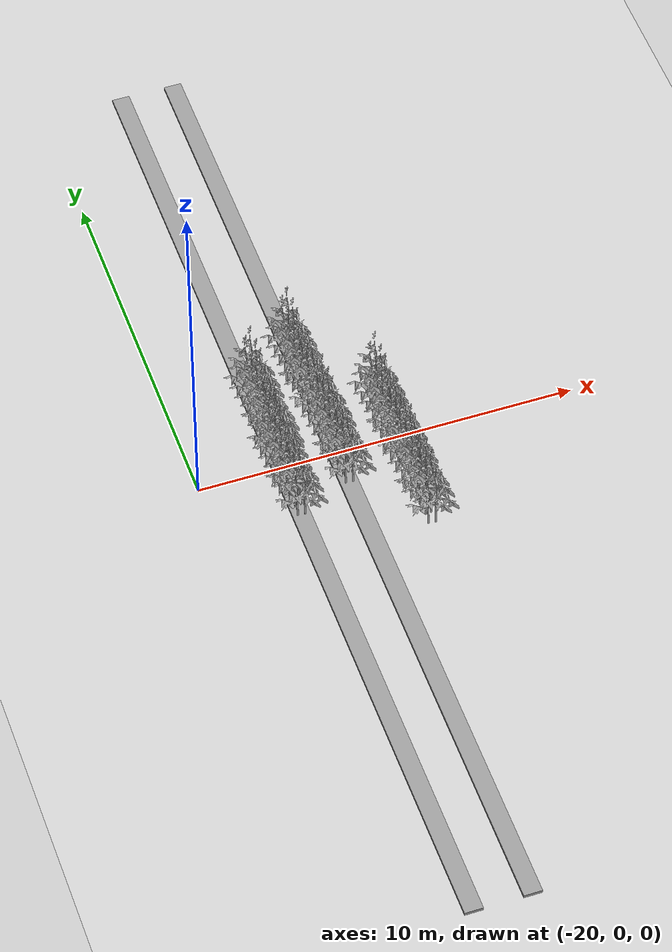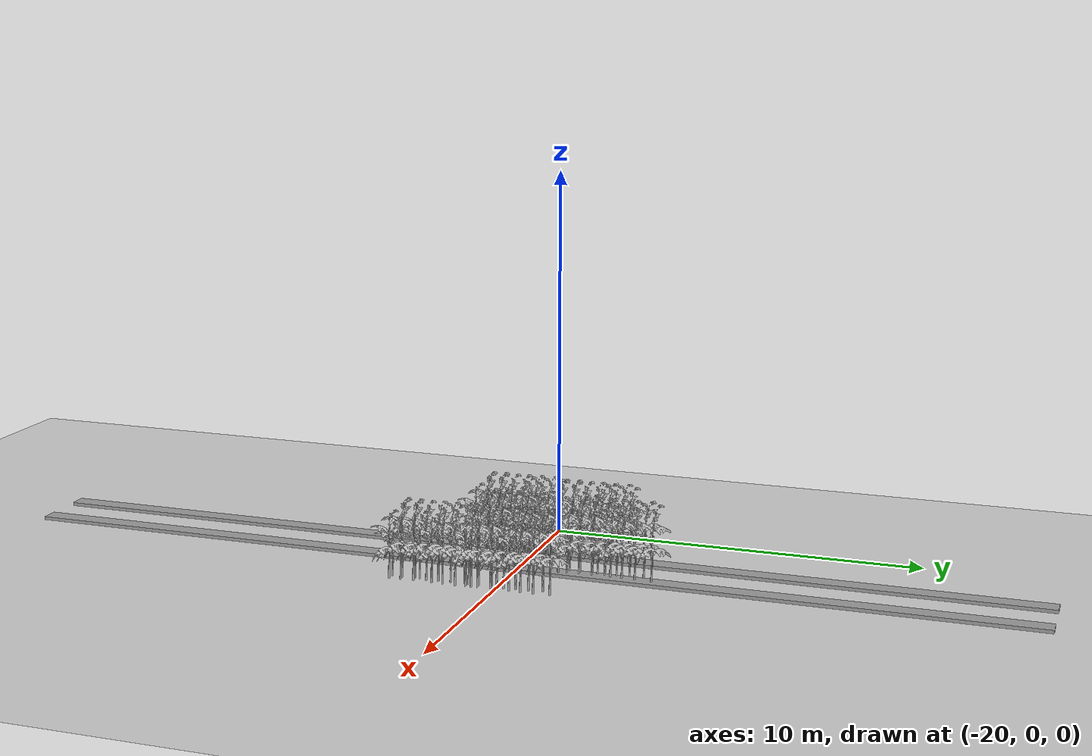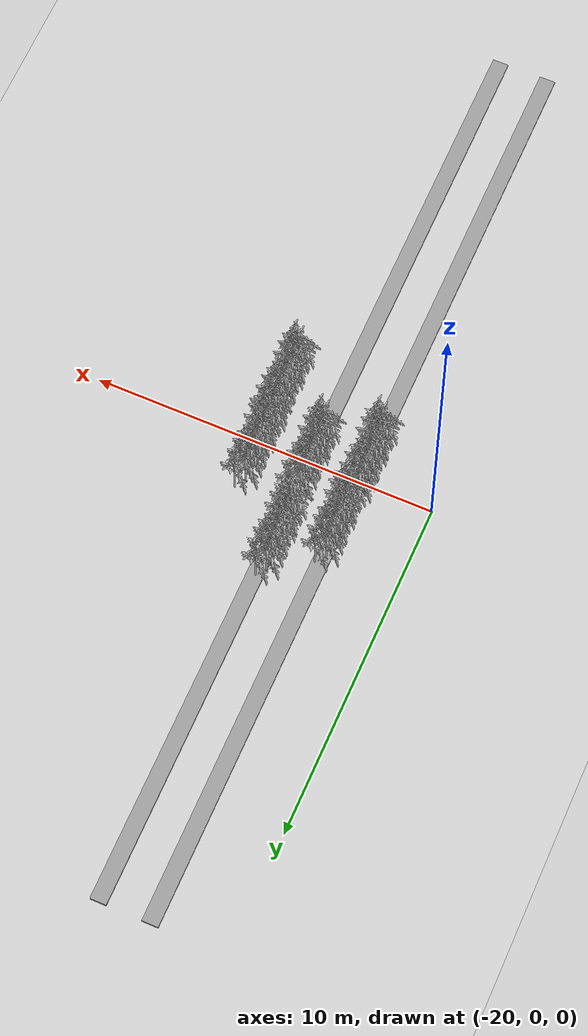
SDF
<sdf version="1.6">
 <world name="default">
  <model name="ground_plane">
   <static>1</static>
   <link name="link">
    <collision name="collision">
     <geometry><plane><normal>0 0 1</normal><size>100 100</size></plane></geometry>
     <surface>
      <contact><collide_bitmask>65535</collide_bitmask></contact>
      <friction><ode><mu>100</mu><mu2>50</mu2></ode></friction>
     </surface>
    </collision>
    <visual name="visual">
     <cast_shadows>0</cast_shadows>
     <geometry><plane><normal>0 0 1</normal><size>100 100</size></plane></geometry>
     <material>
      <script><uri>file://media/materials/scripts/gazebo.material</uri><name>Gazebo/Grey</name></script>
     </material>
    </visual>
   </link>
  </model>
  <model name="Middle_Plant_3">
   <model name="tomato_plant_big">
    <static>1</static>
    <link name="link">
     <collision name="collision">
      <geometry>
       <mesh><scale>5e-06 5e-06 6e-06</scale><uri>model://tomato_plant_big/meshes/tomato-plant.dae</uri></mesh>
      </geometry>
     </collision>
     <visual name="visual">
      <geometry>
       <mesh><scale>5e-06 5e-06 7e-06</scale><uri>model://tomato_plant_big/meshes/tomato-plant.dae</uri></mesh>
      </geometry>
     </visual>
    </link>
    <pose>0.085326 1.23023 0 0 -0 0</pose>
   </model>
   <model name="tomato_plant_big_0">
    <static>1</static>
    <link name="link">
     <collision name="collision">
      <geometry>
       <mesh><scale>5e-06 5e-06 6e-06</scale><uri>model://tomato_plant_big/meshes/tomato-plant.dae</uri></mesh>
      </geometry>
     </collision>
     <visual name="visual">
      <geometry>
       <mesh><scale>5e-06 5e-06 7e-06</scale><uri>model://tomato_plant_big/meshes/tomato-plant.dae</uri></mesh>
      </geometry>
     </visual>
    </link>
    <pose>-0.133881 0.970183 0 0 -0 0</pose>
   </model>
   <model name="tomato_plant_big_1">
    <static>1</static>
    <link name="link">
     <collision name="collision">
      <geometry>
       <mesh><scale>5e-06 5e-06 6e-06</scale><uri>model://tomato_plant_big/meshes/tomato-plant.dae</uri></mesh>
      </geometry>
     </collision>
     <visual name="visual">
      <geometry>
       <mesh><scale>5e-06 5e-06 7e-06</scale><uri>model://tomato_plant_big/meshes/tomato-plant.dae</uri></mesh>
      </geometry>
     </visual>
    </link>
    <pose>0.091162 0.792381 0 0 -0 0</pose>
   </model>
   <model name="tomato_plant_big_2">
    <static>1</static>
    <link name="link">
     <collision name="collision">
      <geometry>
       <mesh><scale>5e-06 5e-06 6e-06</scale><uri>model://tomato_plant_big/meshes/tomato-plant.dae</uri></mesh>
      </geometry>
     </collision>
     <visual name="visual">
      <geometry>
       <mesh><scale>5e-06 5e-06 7e-06</scale><uri>model://tomato_plant_big/meshes/tomato-plant.dae</uri></mesh>
      </geometry>
     </visual>
    </link>
    <pose>-0.099228 0.602587 0 0 -0 0</pose>
   </model>
   <model name="tomato_plant_big_3">
    <static>1</static>
    <link name="link">
     <collision name="collision">
      <geometry>
       <mesh><scale>5e-06 5e-06 6e-06</scale><uri>model://tomato_plant_big/meshes/tomato-plant.dae</uri></mesh>
      </geometry>
     </collision>
     <visual name="visual">
      <geometry>
       <mesh><scale>5e-06 5e-06 7e-06</scale><uri>model://tomato_plant_big/meshes/tomato-plant.dae</uri></mesh>
      </geometry>
     </visual>
    </link>
    <pose>0.083199 0.447645 0 0 -0 0</pose>
   </model>
   <model name="tomato_plant_big_4">
    <static>1</static>
    <link name="link">
     <collision name="collision">
      <geometry>
       <mesh><scale>5e-06 5e-06 6e-06</scale><uri>model://tomato_plant_big/meshes/tomato-plant.dae</uri></mesh>
      </geometry>
     </collision>
     <visual name="visual">
      <geometry>
       <mesh><scale>5e-06 5e-06 7e-06</scale><uri>model://tomato_plant_big/meshes/tomato-plant.dae</uri></mesh>
      </geometry>
     </visual>
    </link>
    <pose>-0.079499 0.263486 0 0 -0 0</pose>
   </model>
   <model name="tomato_plant_big_5">
    <static>1</static>
    <link name="link">
     <collision name="collision">
      <geometry>
       <mesh><scale>5e-06 5e-06 6e-06</scale><uri>model://tomato_plant_big/meshes/tomato-plant.dae</uri></mesh>
      </geometry>
     </collision>
     <visual name="visual">
      <geometry>
       <mesh><scale>5e-06 5e-06 7e-06</scale><uri>model://tomato_plant_big/meshes/tomato-plant.dae</uri></mesh>
      </geometry>
     </visual>
    </link>
    <pose>-0.033274 -0.040578 0 0 -0 0</pose>
   </model>
   <model name="tomato_plant_big_6">
    <static>1</static>
    <link name="link">
     <collision name="collision">
      <geometry>
       <mesh><scale>5e-06 5e-06 6e-06</scale><uri>model://tomato_plant_big/meshes/tomato-plant.dae</uri></mesh>
      </geometry>
     </collision>
     <visual name="visual">
      <geometry>
       <mesh><scale>5e-06 5e-06 7e-06</scale><uri>model://tomato_plant_big/meshes/tomato-plant.dae</uri></mesh>
      </geometry>
     </visual>
    </link>
    <pose>-0.07669 -0.382406 0 0 -0 0</pose>
   </model>
   <model name="tomato_plant_big_7">
    <static>1</static>
    <link name="link">
     <collision name="collision">
      <geometry>
       <mesh><scale>5e-06 5e-06 6e-06</scale><uri>model://tomato_plant_big/meshes/tomato-plant.dae</uri></mesh>
      </geometry>
     </collision>
     <visual name="visual">
      <geometry>
       <mesh><scale>5e-06 5e-06 7e-06</scale><uri>model://tomato_plant_big/meshes/tomato-plant.dae</uri></mesh>
      </geometry>
     </visual>
    </link>
    <pose>0.092388 -0.348189 0 0 -0 0</pose>
   </model>
   <model name="tomato_plant_big_8">
    <static>1</static>
    <link name="link">
     <collision name="collision">
      <geometry>
       <mesh><scale>5e-06 5e-06 6e-06</scale><uri>model://tomato_plant_big/meshes/tomato-plant.dae</uri></mesh>
      </geometry>
     </collision>
     <visual name="visual">
      <geometry>
       <mesh><scale>5e-06 5e-06 7e-06</scale><uri>model://tomato_plant_big/meshes/tomato-plant.dae</uri></mesh>
      </geometry>
     </visual>
    </link>
    <pose>0.099522 -0.697525 0 0 -0 0</pose>
   </model>
   <model name="tomato_plant_big_9">
    <static>1</static>
    <link name="link">
     <collision name="collision">
      <geometry>
       <mesh><scale>5e-06 5e-06 6e-06</scale><uri>model://tomato_plant_big/meshes/tomato-plant.dae</uri></mesh>
      </geometry>
     </collision>
     <visual name="visual">
      <geometry>
       <mesh><scale>5e-06 5e-06 7e-06</scale><uri>model://tomato_plant_big/meshes/tomato-plant.dae</uri></mesh>
      </geometry>
     </visual>
    </link>
    <pose>-0.050449 -0.712772 0 0 -0 0</pose>
   </model>
   <model name="tomato_plant_medium">
    <static>1</static>
    <link name="link">
     <collision name="collision">
      <geometry>
       <mesh><scale>5e-06 5e-06 6e-06</scale><uri>model://tomato_plant_medium/meshes/tomato-plant.dae</uri></mesh>
      </geometry>
     </collision>
     <visual name="visual">
      <geometry>
       <mesh><scale>5e-06 5e-06 6e-06</scale><uri>model://tomato_plant_medium/meshes/tomato-plant.dae</uri></mesh>
      </geometry>
     </visual>
    </link>
    <pose>0.078434 0.139842 0 0 -0 0</pose>
   </model>
   <model name="tomato_plant_medium_0">
    <static>1</static>
    <link name="link">
     <collision name="collision">
      <geometry>
       <mesh><scale>5e-06 5e-06 6e-06</scale><uri>model://tomato_plant_medium/meshes/tomato-plant.dae</uri></mesh>
      </geometry>
     </collision>
     <visual name="visual">
      <geometry>
       <mesh><scale>5e-06 5e-06 6e-06</scale><uri>model://tomato_plant_medium/meshes/tomato-plant.dae</uri></mesh>
      </geometry>
     </visual>
    </link>
    <pose>-0.079755 -0.244483 0 0 -0 0</pose>
   </model>
   <model name="tomato_plant_medium_1">
    <static>1</static>
    <link name="link">
     <collision name="collision">
      <geometry>
       <mesh><scale>5e-06 5e-06 6e-06</scale><uri>model://tomato_plant_medium/meshes/tomato-plant.dae</uri></mesh>
      </geometry>
     </collision>
     <visual name="visual">
      <geometry>
       <mesh><scale>5e-06 5e-06 6e-06</scale><uri>model://tomato_plant_medium/meshes/tomato-plant.dae</uri></mesh>
      </geometry>
     </visual>
    </link>
    <pose>0.106744 -1.01815 0 0 -0 0</pose>
   </model>
   <model name="tomato_plant_small">
    <static>1</static>
    <link name="link">
     <collision name="collision">
      <geometry>
       <mesh><scale>5e-06 5e-06 5e-06</scale><uri>model://tomato_plant_small/meshes/tomato-plant.dae</uri></mesh>
      </geometry>
     </collision>
     <visual name="visual">
      <geometry>
       <mesh><scale>5e-06 5e-06 5e-06</scale><uri>model://tomato_plant_small/meshes/tomato-plant.dae</uri></mesh>
      </geometry>
     </visual>
    </link>
    <pose>-0.083979 -1.00222 0 0 -0 0</pose>
   </model>
   <static>0</static>
   <pose>-17.83 -0.652997 0 0 -0 0</pose>
  </model>
  <model name="Middle_Plant_4">
   <model name="tomato_plant_big">
    <static>1</static>
    <link name="link">
     <collision name="collision">
      <geometry>
       <mesh><scale>5e-06 5e-06 6e-06</scale><uri>model://tomato_plant_big/meshes/tomato-plant.dae</uri></mesh>
      </geometry>
     </collision>
     <visual name="visual">
      <geometry>
       <mesh><scale>5e-06 5e-06 7e-06</scale><uri>model://tomato_plant_big/meshes/tomato-plant.dae</uri></mesh>
      </geometry>
     </visual>
    </link>
    <pose>0.085326 1.23023 0 0 -0 0</pose>
   </model>
   <model name="tomato_plant_big_0">
    <static>1</static>
    <link name="link">
     <collision name="collision">
      <geometry>
       <mesh><scale>5e-06 5e-06 6e-06</scale><uri>model://tomato_plant_big/meshes/tomato-plant.dae</uri></mesh>
      </geometry>
     </collision>
     <visual name="visual">
      <geometry>
       <mesh><scale>5e-06 5e-06 7e-06</scale><uri>model://tomato_plant_big/meshes/tomato-plant.dae</uri></mesh>
      </geometry>
     </visual>
    </link>
    <pose>-0.133881 0.970183 0 0 -0 0</pose>
   </model>
   <model name="tomato_plant_big_1">
    <static>1</static>
    <link name="link">
     <collision name="collision">
      <geometry>
       <mesh><scale>5e-06 5e-06 6e-06</scale><uri>model://tomato_plant_big/meshes/tomato-plant.dae</uri></mesh>
      </geometry>
     </collision>
     <visual name="visual">
      <geometry>
       <mesh><scale>5e-06 5e-06 7e-06</scale><uri>model://tomato_plant_big/meshes/tomato-plant.dae</uri></mesh>
      </geometry>
     </visual>
    </link>
    <pose>0.091162 0.792381 0 0 -0 0</pose>
   </model>
   <model name="tomato_plant_big_2">
    <static>1</static>
    <link name="link">
     <collision name="collision">
      <geometry>
       <mesh><scale>5e-06 5e-06 6e-06</scale><uri>model://tomato_plant_big/meshes/tomato-plant.dae</uri></mesh>
      </geometry>
     </collision>
     <visual name="visual">
      <geometry>
       <mesh><scale>5e-06 5e-06 7e-06</scale><uri>model://tomato_plant_big/meshes/tomato-plant.dae</uri></mesh>
      </geometry>
     </visual>
    </link>
    <pose>-0.099228 0.602587 0 0 -0 0</pose>
   </model>
   <model name="tomato_plant_big_3">
    <static>1</static>
    <link name="link">
     <collision name="collision">
      <geometry>
       <mesh><scale>5e-06 5e-06 6e-06</scale><uri>model://tomato_plant_big/meshes/tomato-plant.dae</uri></mesh>
      </geometry>
     </collision>
     <visual name="visual">
      <geometry>
       <mesh><scale>5e-06 5e-06 7e-06</scale><uri>model://tomato_plant_big/meshes/tomato-plant.dae</uri></mesh>
      </geometry>
     </visual>
    </link>
    <pose>0.083199 0.447645 0 0 -0 0</pose>
   </model>
   <model name="tomato_plant_big_4">
    <static>1</static>
    <link name="link">
     <collision name="collision">
      <geometry>
       <mesh><scale>5e-06 5e-06 6e-06</scale><uri>model://tomato_plant_big/meshes/tomato-plant.dae</uri></mesh>
      </geometry>
     </collision>
     <visual name="visual">
      <geometry>
       <mesh><scale>5e-06 5e-06 7e-06</scale><uri>model://tomato_plant_big/meshes/tomato-plant.dae</uri></mesh>
      </geometry>
     </visual>
    </link>
    <pose>-0.079499 0.263486 0 0 -0 0</pose>
   </model>
   <model name="tomato_plant_big_5">
    <static>1</static>
    <link name="link">
     <collision name="collision">
      <geometry>
       <mesh><scale>5e-06 5e-06 6e-06</scale><uri>model://tomato_plant_big/meshes/tomato-plant.dae</uri></mesh>
      </geometry>
     </collision>
     <visual name="visual">
      <geometry>
       <mesh><scale>5e-06 5e-06 7e-06</scale><uri>model://tomato_plant_big/meshes/tomato-plant.dae</uri></mesh>
      </geometry>
     </visual>
    </link>
    <pose>-0.033274 -0.040578 0 0 -0 0</pose>
   </model>
   <model name="tomato_plant_big_6">
    <static>1</static>
    <link name="link">
     <collision name="collision">
      <geometry>
       <mesh><scale>5e-06 5e-06 6e-06</scale><uri>model://tomato_plant_big/meshes/tomato-plant.dae</uri></mesh>
      </geometry>
     </collision>
     <visual name="visual">
      <geometry>
       <mesh><scale>5e-06 5e-06 7e-06</scale><uri>model://tomato_plant_big/meshes/tomato-plant.dae</uri></mesh>
      </geometry>
     </visual>
    </link>
    <pose>-0.07669 -0.382406 0 0 -0 0</pose>
   </model>
   <model name="tomato_plant_big_7">
    <static>1</static>
    <link name="link">
     <collision name="collision">
      <geometry>
       <mesh><scale>5e-06 5e-06 6e-06</scale><uri>model://tomato_plant_big/meshes/tomato-plant.dae</uri></mesh>
      </geometry>
     </collision>
     <visual name="visual">
      <geometry>
       <mesh><scale>5e-06 5e-06 7e-06</scale><uri>model://tomato_plant_big/meshes/tomato-plant.dae</uri></mesh>
      </geometry>
     </visual>
    </link>
    <pose>0.092388 -0.348189 0 0 -0 0</pose>
   </model>
   <model name="tomato_plant_big_8">
    <static>1</static>
    <link name="link">
     <collision name="collision">
      <geometry>
       <mesh><scale>5e-06 5e-06 6e-06</scale><uri>model://tomato_plant_big/meshes/tomato-plant.dae</uri></mesh>
      </geometry>
     </collision>
     <visual name="visual">
      <geometry>
       <mesh><scale>5e-06 5e-06 7e-06</scale><uri>model://tomato_plant_big/meshes/tomato-plant.dae</uri></mesh>
      </geometry>
     </visual>
    </link>
    <pose>0.099522 -0.697525 0 0 -0 0</pose>
   </model>
   <model name="tomato_plant_big_9">
    <static>1</static>
    <link name="link">
     <collision name="collision">
      <geometry>
       <mesh><scale>5e-06 5e-06 6e-06</scale><uri>model://tomato_plant_big/meshes/tomato-plant.dae</uri></mesh>
      </geometry>
     </collision>
     <visual name="visual">
      <geometry>
       <mesh><scale>5e-06 5e-06 7e-06</scale><uri>model://tomato_plant_big/meshes/tomato-plant.dae</uri></mesh>
      </geometry>
     </visual>
    </link>
    <pose>-0.050449 -0.712772 0 0 -0 0</pose>
   </model>
   <model name="tomato_plant_medium">
    <static>1</static>
    <link name="link">
     <collision name="collision">
      <geometry>
       <mesh><scale>5e-06 5e-06 6e-06</scale><uri>model://tomato_plant_medium/meshes/tomato-plant.dae</uri></mesh>
      </geometry>
     </collision>
     <visual name="visual">
      <geometry>
       <mesh><scale>5e-06 5e-06 6e-06</scale><uri>model://tomato_plant_medium/meshes/tomato-plant.dae</uri></mesh>
      </geometry>
     </visual>
    </link>
    <pose>0.078434 0.139842 0 0 -0 0</pose>
   </model>
   <model name="tomato_plant_medium_0">
    <static>1</static>
    <link name="link">
     <collision name="collision">
      <geometry>
       <mesh><scale>5e-06 5e-06 6e-06</scale><uri>model://tomato_plant_medium/meshes/tomato-plant.dae</uri></mesh>
      </geometry>
     </collision>
     <visual name="visual">
      <geometry>
       <mesh><scale>5e-06 5e-06 6e-06</scale><uri>model://tomato_plant_medium/meshes/tomato-plant.dae</uri></mesh>
      </geometry>
     </visual>
    </link>
    <pose>-0.079755 -0.244483 0 0 -0 0</pose>
   </model>
   <model name="tomato_plant_medium_1">
    <static>1</static>
    <link name="link">
     <collision name="collision">
      <geometry>
       <mesh><scale>5e-06 5e-06 6e-06</scale><uri>model://tomato_plant_medium/meshes/tomato-plant.dae</uri></mesh>
      </geometry>
     </collision>
     <visual name="visual">
      <geometry>
       <mesh><scale>5e-06 5e-06 6e-06</scale><uri>model://tomato_plant_medium/meshes/tomato-plant.dae</uri></mesh>
      </geometry>
     </visual>
    </link>
    <pose>0.106744 -1.01815 0 0 -0 0</pose>
   </model>
   <model name="tomato_plant_small">
    <static>1</static>
    <link name="link">
     <collision name="collision">
      <geometry>
       <mesh><scale>5e-06 5e-06 5e-06</scale><uri>model://tomato_plant_small/meshes/tomato-plant.dae</uri></mesh>
      </geometry>
     </collision>
     <visual name="visual">
      <geometry>
       <mesh><scale>5e-06 5e-06 5e-06</scale><uri>model://tomato_plant_small/meshes/tomato-plant.dae</uri></mesh>
      </geometry>
     </visual>
    </link>
    <pose>-0.083979 -1.00222 0 0 -0 0</pose>
   </model>
   <static>0</static>
   <pose>-17.7665 1.40973 0 0 -0 0</pose>
  </model>
  <model name="Middle_Plant_20">
   <model name="tomato_plant_big">
    <static>1</static>
    <link name="link">
     <collision name="collision">
      <geometry>
       <mesh><scale>5e-06 5e-06 6e-06</scale><uri>model://tomato_plant_big/meshes/tomato-plant.dae</uri></mesh>
      </geometry>
     </collision>
     <visual name="visual">
      <geometry>
       <mesh><scale>5e-06 5e-06 7e-06</scale><uri>model://tomato_plant_big/meshes/tomato-plant.dae</uri></mesh>
      </geometry>
     </visual>
    </link>
    <pose>0.085326 1.23023 0 0 -0 0</pose>
   </model>
   <model name="tomato_plant_big_0">
    <static>1</static>
    <link name="link">
     <collision name="collision">
      <geometry>
       <mesh><scale>5e-06 5e-06 6e-06</scale><uri>model://tomato_plant_big/meshes/tomato-plant.dae</uri></mesh>
      </geometry>
     </collision>
     <visual name="visual">
      <geometry>
       <mesh><scale>5e-06 5e-06 7e-06</scale><uri>model://tomato_plant_big/meshes/tomato-plant.dae</uri></mesh>
      </geometry>
     </visual>
    </link>
    <pose>-0.133881 0.970183 0 0 -0 0</pose>
   </model>
   <model name="tomato_plant_big_1">
    <static>1</static>
    <link name="link">
     <collision name="collision">
      <geometry>
       <mesh><scale>5e-06 5e-06 6e-06</scale><uri>model://tomato_plant_big/meshes/tomato-plant.dae</uri></mesh>
      </geometry>
     </collision>
     <visual name="visual">
      <geometry>
       <mesh><scale>5e-06 5e-06 7e-06</scale><uri>model://tomato_plant_big/meshes/tomato-plant.dae</uri></mesh>
      </geometry>
     </visual>
    </link>
    <pose>0.091162 0.792381 0 0 -0 0</pose>
   </model>
   <model name="tomato_plant_big_2">
    <static>1</static>
    <link name="link">
     <collision name="collision">
      <geometry>
       <mesh><scale>5e-06 5e-06 6e-06</scale><uri>model://tomato_plant_big/meshes/tomato-plant.dae</uri></mesh>
      </geometry>
     </collision>
     <visual name="visual">
      <geometry>
       <mesh><scale>5e-06 5e-06 7e-06</scale><uri>model://tomato_plant_big/meshes/tomato-plant.dae</uri></mesh>
      </geometry>
     </visual>
    </link>
    <pose>-0.099228 0.602587 0 0 -0 0</pose>
   </model>
   <model name="tomato_plant_big_3">
    <static>1</static>
    <link name="link">
     <collision name="collision">
      <geometry>
       <mesh><scale>5e-06 5e-06 6e-06</scale><uri>model://tomato_plant_big/meshes/tomato-plant.dae</uri></mesh>
      </geometry>
     </collision>
     <visual name="visual">
      <geometry>
       <mesh><scale>5e-06 5e-06 7e-06</scale><uri>model://tomato_plant_big/meshes/tomato-plant.dae</uri></mesh>
      </geometry>
     </visual>
    </link>
    <pose>0.083199 0.447645 0 0 -0 0</pose>
   </model>
   <model name="tomato_plant_big_4">
    <static>1</static>
    <link name="link">
     <collision name="collision">
      <geometry>
       <mesh><scale>5e-06 5e-06 6e-06</scale><uri>model://tomato_plant_big/meshes/tomato-plant.dae</uri></mesh>
      </geometry>
     </collision>
     <visual name="visual">
      <geometry>
       <mesh><scale>5e-06 5e-06 7e-06</scale><uri>model://tomato_plant_big/meshes/tomato-plant.dae</uri></mesh>
      </geometry>
     </visual>
    </link>
    <pose>-0.079499 0.263486 0 0 -0 0</pose>
   </model>
   <model name="tomato_plant_big_5">
    <static>1</static>
    <link name="link">
     <collision name="collision">
      <geometry>
       <mesh><scale>5e-06 5e-06 6e-06</scale><uri>model://tomato_plant_big/meshes/tomato-plant.dae</uri></mesh>
      </geometry>
     </collision>
     <visual name="visual">
      <geometry>
       <mesh><scale>5e-06 5e-06 7e-06</scale><uri>model://tomato_plant_big/meshes/tomato-plant.dae</uri></mesh>
      </geometry>
     </visual>
    </link>
    <pose>-0.033274 -0.040578 0 0 -0 0</pose>
   </model>
   <model name="tomato_plant_big_6">
    <static>1</static>
    <link name="link">
     <collision name="collision">
      <geometry>
       <mesh><scale>5e-06 5e-06 6e-06</scale><uri>model://tomato_plant_big/meshes/tomato-plant.dae</uri></mesh>
      </geometry>
     </collision>
     <visual name="visual">
      <geometry>
       <mesh><scale>5e-06 5e-06 7e-06</scale><uri>model://tomato_plant_big/meshes/tomato-plant.dae</uri></mesh>
      </geometry>
     </visual>
    </link>
    <pose>-0.07669 -0.382406 0 0 -0 0</pose>
   </model>
   <model name="tomato_plant_big_7">
    <static>1</static>
    <link name="link">
     <collision name="collision">
      <geometry>
       <mesh><scale>5e-06 5e-06 6e-06</scale><uri>model://tomato_plant_big/meshes/tomato-plant.dae</uri></mesh>
      </geometry>
     </collision>
     <visual name="visual">
      <geometry>
       <mesh><scale>5e-06 5e-06 7e-06</scale><uri>model://tomato_plant_big/meshes/tomato-plant.dae</uri></mesh>
      </geometry>
     </visual>
    </link>
    <pose>0.092388 -0.348189 0 0 -0 0</pose>
   </model>
   <model name="tomato_plant_big_8">
    <static>1</static>
    <link name="link">
     <collision name="collision">
      <geometry>
       <mesh><scale>5e-06 5e-06 6e-06</scale><uri>model://tomato_plant_big/meshes/tomato-plant.dae</uri></mesh>
      </geometry>
     </collision>
     <visual name="visual">
      <geometry>
       <mesh><scale>5e-06 5e-06 7e-06</scale><uri>model://tomato_plant_big/meshes/tomato-plant.dae</uri></mesh>
      </geometry>
     </visual>
    </link>
    <pose>0.099522 -0.697525 0 0 -0 0</pose>
   </model>
   <model name="tomato_plant_big_9">
    <static>1</static>
    <link name="link">
     <collision name="collision">
      <geometry>
       <mesh><scale>5e-06 5e-06 6e-06</scale><uri>model://tomato_plant_big/meshes/tomato-plant.dae</uri></mesh>
      </geometry>
     </collision>
     <visual name="visual">
      <geometry>
       <mesh><scale>5e-06 5e-06 7e-06</scale><uri>model://tomato_plant_big/meshes/tomato-plant.dae</uri></mesh>
      </geometry>
     </visual>
    </link>
    <pose>-0.050449 -0.712772 0 0 -0 0</pose>
   </model>
   <model name="tomato_plant_medium">
    <static>1</static>
    <link name="link">
     <collision name="collision">
      <geometry>
       <mesh><scale>5e-06 5e-06 6e-06</scale><uri>model://tomato_plant_medium/meshes/tomato-plant.dae</uri></mesh>
      </geometry>
     </collision>
     <visual name="visual">
      <geometry>
       <mesh><scale>5e-06 5e-06 6e-06</scale><uri>model://tomato_plant_medium/meshes/tomato-plant.dae</uri></mesh>
      </geometry>
     </visual>
    </link>
    <pose>0.078434 0.139842 0 0 -0 0</pose>
   </model>
   <model name="tomato_plant_medium_0">
    <static>1</static>
    <link name="link">
     <collision name="collision">
      <geometry>
       <mesh><scale>5e-06 5e-06 6e-06</scale><uri>model://tomato_plant_medium/meshes/tomato-plant.dae</uri></mesh>
      </geometry>
     </collision>
     <visual name="visual">
      <geometry>
       <mesh><scale>5e-06 5e-06 6e-06</scale><uri>model://tomato_plant_medium/meshes/tomato-plant.dae</uri></mesh>
      </geometry>
     </visual>
    </link>
    <pose>-0.079755 -0.244483 0 0 -0 0</pose>
   </model>
   <model name="tomato_plant_medium_1">
    <static>1</static>
    <link name="link">
     <collision name="collision">
      <geometry>
       <mesh><scale>5e-06 5e-06 6e-06</scale><uri>model://tomato_plant_medium/meshes/tomato-plant.dae</uri></mesh>
      </geometry>
     </collision>
     <visual name="visual">
      <geometry>
       <mesh><scale>5e-06 5e-06 6e-06</scale><uri>model://tomato_plant_medium/meshes/tomato-plant.dae</uri></mesh>
      </geometry>
     </visual>
    </link>
    <pose>0.106744 -1.01815 0 0 -0 0</pose>
   </model>
   <model name="tomato_plant_small">
    <static>1</static>
    <link name="link">
     <collision name="collision">
      <geometry>
       <mesh><scale>5e-06 5e-06 5e-06</scale><uri>model://tomato_plant_small/meshes/tomato-plant.dae</uri></mesh>
      </geometry>
     </collision>
     <visual name="visual">
      <geometry>
       <mesh><scale>5e-06 5e-06 5e-06</scale><uri>model://tomato_plant_small/meshes/tomato-plant.dae</uri></mesh>
      </geometry>
     </visual>
    </link>
    <pose>-0.083979 -1.00222 0 0 -0 0</pose>
   </model>
   <static>0</static>
   <pose>-16.3596 -0.06631 0 0 -0 0</pose>
  </model>
  <model name="Middle_Plant_21">
   <model name="tomato_plant_big">
    <static>1</static>
    <link name="link">
     <collision name="collision">
      <geometry>
       <mesh><scale>5e-06 5e-06 6e-06</scale><uri>model://tomato_plant_big/meshes/tomato-plant.dae</uri></mesh>
      </geometry>
     </collision>
     <visual name="visual">
      <geometry>
       <mesh><scale>5e-06 5e-06 7e-06</scale><uri>model://tomato_plant_big/meshes/tomato-plant.dae</uri></mesh>
      </geometry>
     </visual>
    </link>
    <pose>0.085326 1.23023 0 0 -0 0</pose>
   </model>
   <model name="tomato_plant_big_0">
    <static>1</static>
    <link name="link">
     <collision name="collision">
      <geometry>
       <mesh><scale>5e-06 5e-06 6e-06</scale><uri>model://tomato_plant_big/meshes/tomato-plant.dae</uri></mesh>
      </geometry>
     </collision>
     <visual name="visual">
      <geometry>
       <mesh><scale>5e-06 5e-06 7e-06</scale><uri>model://tomato_plant_big/meshes/tomato-plant.dae</uri></mesh>
      </geometry>
     </visual>
    </link>
    <pose>-0.133881 0.970183 0 0 -0 0</pose>
   </model>
   <model name="tomato_plant_big_1">
    <static>1</static>
    <link name="link">
     <collision name="collision">
      <geometry>
       <mesh><scale>5e-06 5e-06 6e-06</scale><uri>model://tomato_plant_big/meshes/tomato-plant.dae</uri></mesh>
      </geometry>
     </collision>
     <visual name="visual">
      <geometry>
       <mesh><scale>5e-06 5e-06 7e-06</scale><uri>model://tomato_plant_big/meshes/tomato-plant.dae</uri></mesh>
      </geometry>
     </visual>
    </link>
    <pose>0.091162 0.792381 0 0 -0 0</pose>
   </model>
   <model name="tomato_plant_big_2">
    <static>1</static>
    <link name="link">
     <collision name="collision">
      <geometry>
       <mesh><scale>5e-06 5e-06 6e-06</scale><uri>model://tomato_plant_big/meshes/tomato-plant.dae</uri></mesh>
      </geometry>
     </collision>
     <visual name="visual">
      <geometry>
       <mesh><scale>5e-06 5e-06 7e-06</scale><uri>model://tomato_plant_big/meshes/tomato-plant.dae</uri></mesh>
      </geometry>
     </visual>
    </link>
    <pose>-0.099228 0.602587 0 0 -0 0</pose>
   </model>
   <model name="tomato_plant_big_3">
    <static>1</static>
    <link name="link">
     <collision name="collision">
      <geometry>
       <mesh><scale>5e-06 5e-06 6e-06</scale><uri>model://tomato_plant_big/meshes/tomato-plant.dae</uri></mesh>
      </geometry>
     </collision>
     <visual name="visual">
      <geometry>
       <mesh><scale>5e-06 5e-06 7e-06</scale><uri>model://tomato_plant_big/meshes/tomato-plant.dae</uri></mesh>
      </geometry>
     </visual>
    </link>
    <pose>0.083199 0.447645 0 0 -0 0</pose>
   </model>
   <model name="tomato_plant_big_4">
    <static>1</static>
    <link name="link">
     <collision name="collision">
      <geometry>
       <mesh><scale>5e-06 5e-06 6e-06</scale><uri>model://tomato_plant_big/meshes/tomato-plant.dae</uri></mesh>
      </geometry>
     </collision>
     <visual name="visual">
      <geometry>
       <mesh><scale>5e-06 5e-06 7e-06</scale><uri>model://tomato_plant_big/meshes/tomato-plant.dae</uri></mesh>
      </geometry>
     </visual>
    </link>
    <pose>-0.079499 0.263486 0 0 -0 0</pose>
   </model>
   <model name="tomato_plant_big_5">
    <static>1</static>
    <link name="link">
     <collision name="collision">
      <geometry>
       <mesh><scale>5e-06 5e-06 6e-06</scale><uri>model://tomato_plant_big/meshes/tomato-plant.dae</uri></mesh>
      </geometry>
     </collision>
     <visual name="visual">
      <geometry>
       <mesh><scale>5e-06 5e-06 7e-06</scale><uri>model://tomato_plant_big/meshes/tomato-plant.dae</uri></mesh>
      </geometry>
     </visual>
    </link>
    <pose>-0.033274 -0.040578 0 0 -0 0</pose>
   </model>
   <model name="tomato_plant_big_6">
    <static>1</static>
    <link name="link">
     <collision name="collision">
      <geometry>
       <mesh><scale>5e-06 5e-06 6e-06</scale><uri>model://tomato_plant_big/meshes/tomato-plant.dae</uri></mesh>
      </geometry>
     </collision>
     <visual name="visual">
      <geometry>
       <mesh><scale>5e-06 5e-06 7e-06</scale><uri>model://tomato_plant_big/meshes/tomato-plant.dae</uri></mesh>
      </geometry>
     </visual>
    </link>
    <pose>-0.07669 -0.382406 0 0 -0 0</pose>
   </model>
   <model name="tomato_plant_big_7">
    <static>1</static>
    <link name="link">
     <collision name="collision">
      <geometry>
       <mesh><scale>5e-06 5e-06 6e-06</scale><uri>model://tomato_plant_big/meshes/tomato-plant.dae</uri></mesh>
      </geometry>
     </collision>
     <visual name="visual">
      <geometry>
       <mesh><scale>5e-06 5e-06 7e-06</scale><uri>model://tomato_plant_big/meshes/tomato-plant.dae</uri></mesh>
      </geometry>
     </visual>
    </link>
    <pose>0.092388 -0.348189 0 0 -0 0</pose>
   </model>
   <model name="tomato_plant_big_8">
    <static>1</static>
    <link name="link">
     <collision name="collision">
      <geometry>
       <mesh><scale>5e-06 5e-06 6e-06</scale><uri>model://tomato_plant_big/meshes/tomato-plant.dae</uri></mesh>
      </geometry>
     </collision>
     <visual name="visual">
      <geometry>
       <mesh><scale>5e-06 5e-06 7e-06</scale><uri>model://tomato_plant_big/meshes/tomato-plant.dae</uri></mesh>
      </geometry>
     </visual>
    </link>
    <pose>0.099522 -0.697525 0 0 -0 0</pose>
   </model>
   <model name="tomato_plant_big_9">
    <static>1</static>
    <link name="link">
     <collision name="collision">
      <geometry>
       <mesh><scale>5e-06 5e-06 6e-06</scale><uri>model://tomato_plant_big/meshes/tomato-plant.dae</uri></mesh>
      </geometry>
     </collision>
     <visual name="visual">
      <geometry>
       <mesh><scale>5e-06 5e-06 7e-06</scale><uri>model://tomato_plant_big/meshes/tomato-plant.dae</uri></mesh>
      </geometry>
     </visual>
    </link>
    <pose>-0.050449 -0.712772 0 0 -0 0</pose>
   </model>
   <model name="tomato_plant_medium">
    <static>1</static>
    <link name="link">
     <collision name="collision">
      <geometry>
       <mesh><scale>5e-06 5e-06 6e-06</scale><uri>model://tomato_plant_medium/meshes/tomato-plant.dae</uri></mesh>
      </geometry>
     </collision>
     <visual name="visual">
      <geometry>
       <mesh><scale>5e-06 5e-06 6e-06</scale><uri>model://tomato_plant_medium/meshes/tomato-plant.dae</uri></mesh>
      </geometry>
     </visual>
    </link>
    <pose>0.078434 0.139842 0 0 -0 0</pose>
   </model>
   <model name="tomato_plant_medium_0">
    <static>1</static>
    <link name="link">
     <collision name="collision">
      <geometry>
       <mesh><scale>5e-06 5e-06 6e-06</scale><uri>model://tomato_plant_medium/meshes/tomato-plant.dae</uri></mesh>
      </geometry>
     </collision>
     <visual name="visual">
      <geometry>
       <mesh><scale>5e-06 5e-06 6e-06</scale><uri>model://tomato_plant_medium/meshes/tomato-plant.dae</uri></mesh>
      </geometry>
     </visual>
    </link>
    <pose>-0.079755 -0.244483 0 0 -0 0</pose>
   </model>
   <model name="tomato_plant_medium_1">
    <static>1</static>
    <link name="link">
     <collision name="collision">
      <geometry>
       <mesh><scale>5e-06 5e-06 6e-06</scale><uri>model://tomato_plant_medium/meshes/tomato-plant.dae</uri></mesh>
      </geometry>
     </collision>
     <visual name="visual">
      <geometry>
       <mesh><scale>5e-06 5e-06 6e-06</scale><uri>model://tomato_plant_medium/meshes/tomato-plant.dae</uri></mesh>
      </geometry>
     </visual>
    </link>
    <pose>0.106744 -1.01815 0 0 -0 0</pose>
   </model>
   <model name="tomato_plant_small">
    <static>1</static>
    <link name="link">
     <collision name="collision">
      <geometry>
       <mesh><scale>5e-06 5e-06 5e-06</scale><uri>model://tomato_plant_small/meshes/tomato-plant.dae</uri></mesh>
      </geometry>
     </collision>
     <visual name="visual">
      <geometry>
       <mesh><scale>5e-06 5e-06 5e-06</scale><uri>model://tomato_plant_small/meshes/tomato-plant.dae</uri></mesh>
      </geometry>
     </visual>
    </link>
    <pose>-0.083979 -1.00222 0 0 -0 0</pose>
   </model>
   <static>0</static>
   <pose>-14.8137 -1.87873 0 0 -0 0</pose>
  </model>
  <model name="Middle_Plant_25">
   <model name="tomato_plant_big">
    <static>1</static>
    <link name="link">
     <collision name="collision">
      <geometry>
       <mesh><scale>5e-06 5e-06 6e-06</scale><uri>model://tomato_plant_big/meshes/tomato-plant.dae</uri></mesh>
      </geometry>
     </collision>
     <visual name="visual">
      <geometry>
       <mesh><scale>5e-06 5e-06 7e-06</scale><uri>model://tomato_plant_big/meshes/tomato-plant.dae</uri></mesh>
      </geometry>
     </visual>
    </link>
    <pose>0.085326 1.23023 0 0 -0 0</pose>
   </model>
   <model name="tomato_plant_big_0">
    <static>1</static>
    <link name="link">
     <collision name="collision">
      <geometry>
       <mesh><scale>5e-06 5e-06 6e-06</scale><uri>model://tomato_plant_big/meshes/tomato-plant.dae</uri></mesh>
      </geometry>
     </collision>
     <visual name="visual">
      <geometry>
       <mesh><scale>5e-06 5e-06 7e-06</scale><uri>model://tomato_plant_big/meshes/tomato-plant.dae</uri></mesh>
      </geometry>
     </visual>
    </link>
    <pose>-0.133881 0.970183 0 0 -0 0</pose>
   </model>
   <model name="tomato_plant_big_1">
    <static>1</static>
    <link name="link">
     <collision name="collision">
      <geometry>
       <mesh><scale>5e-06 5e-06 6e-06</scale><uri>model://tomato_plant_big/meshes/tomato-plant.dae</uri></mesh>
      </geometry>
     </collision>
     <visual name="visual">
      <geometry>
       <mesh><scale>5e-06 5e-06 7e-06</scale><uri>model://tomato_plant_big/meshes/tomato-plant.dae</uri></mesh>
      </geometry>
     </visual>
    </link>
    <pose>0.091162 0.792381 0 0 -0 0</pose>
   </model>
   <model name="tomato_plant_big_2">
    <static>1</static>
    <link name="link">
     <collision name="collision">
      <geometry>
       <mesh><scale>5e-06 5e-06 6e-06</scale><uri>model://tomato_plant_big/meshes/tomato-plant.dae</uri></mesh>
      </geometry>
     </collision>
     <visual name="visual">
      <geometry>
       <mesh><scale>5e-06 5e-06 7e-06</scale><uri>model://tomato_plant_big/meshes/tomato-plant.dae</uri></mesh>
      </geometry>
     </visual>
    </link>
    <pose>-0.099228 0.602587 0 0 -0 0</pose>
   </model>
   <model name="tomato_plant_big_3">
    <static>1</static>
    <link name="link">
     <collision name="collision">
      <geometry>
       <mesh><scale>5e-06 5e-06 6e-06</scale><uri>model://tomato_plant_big/meshes/tomato-plant.dae</uri></mesh>
      </geometry>
     </collision>
     <visual name="visual">
      <geometry>
       <mesh><scale>5e-06 5e-06 7e-06</scale><uri>model://tomato_plant_big/meshes/tomato-plant.dae</uri></mesh>
      </geometry>
     </visual>
    </link>
    <pose>0.083199 0.447645 0 0 -0 0</pose>
   </model>
   <model name="tomato_plant_big_4">
    <static>1</static>
    <link name="link">
     <collision name="collision">
      <geometry>
       <mesh><scale>5e-06 5e-06 6e-06</scale><uri>model://tomato_plant_big/meshes/tomato-plant.dae</uri></mesh>
      </geometry>
     </collision>
     <visual name="visual">
      <geometry>
       <mesh><scale>5e-06 5e-06 7e-06</scale><uri>model://tomato_plant_big/meshes/tomato-plant.dae</uri></mesh>
      </geometry>
     </visual>
    </link>
    <pose>-0.079499 0.263486 0 0 -0 0</pose>
   </model>
   <model name="tomato_plant_big_5">
    <static>1</static>
    <link name="link">
     <collision name="collision">
      <geometry>
       <mesh><scale>5e-06 5e-06 6e-06</scale><uri>model://tomato_plant_big/meshes/tomato-plant.dae</uri></mesh>
      </geometry>
     </collision>
     <visual name="visual">
      <geometry>
       <mesh><scale>5e-06 5e-06 7e-06</scale><uri>model://tomato_plant_big/meshes/tomato-plant.dae</uri></mesh>
      </geometry>
     </visual>
    </link>
    <pose>-0.033274 -0.040578 0 0 -0 0</pose>
   </model>
   <model name="tomato_plant_big_6">
    <static>1</static>
    <link name="link">
     <collision name="collision">
      <geometry>
       <mesh><scale>5e-06 5e-06 6e-06</scale><uri>model://tomato_plant_big/meshes/tomato-plant.dae</uri></mesh>
      </geometry>
     </collision>
     <visual name="visual">
      <geometry>
       <mesh><scale>5e-06 5e-06 7e-06</scale><uri>model://tomato_plant_big/meshes/tomato-plant.dae</uri></mesh>
      </geometry>
     </visual>
    </link>
    <pose>-0.07669 -0.382406 0 0 -0 0</pose>
   </model>
   <model name="tomato_plant_big_7">
    <static>1</static>
    <link name="link">
     <collision name="collision">
      <geometry>
       <mesh><scale>5e-06 5e-06 6e-06</scale><uri>model://tomato_plant_big/meshes/tomato-plant.dae</uri></mesh>
      </geometry>
     </collision>
     <visual name="visual">
      <geometry>
       <mesh><scale>5e-06 5e-06 7e-06</scale><uri>model://tomato_plant_big/meshes/tomato-plant.dae</uri></mesh>
      </geometry>
     </visual>
    </link>
    <pose>0.092388 -0.348189 0 0 -0 0</pose>
   </model>
   <model name="tomato_plant_big_8">
    <static>1</static>
    <link name="link">
     <collision name="collision">
      <geometry>
       <mesh><scale>5e-06 5e-06 6e-06</scale><uri>model://tomato_plant_big/meshes/tomato-plant.dae</uri></mesh>
      </geometry>
     </collision>
     <visual name="visual">
      <geometry>
       <mesh><scale>5e-06 5e-06 7e-06</scale><uri>model://tomato_plant_big/meshes/tomato-plant.dae</uri></mesh>
      </geometry>
     </visual>
    </link>
    <pose>0.099522 -0.697525 0 0 -0 0</pose>
   </model>
   <model name="tomato_plant_big_9">
    <static>1</static>
    <link name="link">
     <collision name="collision">
      <geometry>
       <mesh><scale>5e-06 5e-06 6e-06</scale><uri>model://tomato_plant_big/meshes/tomato-plant.dae</uri></mesh>
      </geometry>
     </collision>
     <visual name="visual">
      <geometry>
       <mesh><scale>5e-06 5e-06 7e-06</scale><uri>model://tomato_plant_big/meshes/tomato-plant.dae</uri></mesh>
      </geometry>
     </visual>
    </link>
    <pose>-0.050449 -0.712772 0 0 -0 0</pose>
   </model>
   <model name="tomato_plant_medium">
    <static>1</static>
    <link name="link">
     <collision name="collision">
      <geometry>
       <mesh><scale>5e-06 5e-06 6e-06</scale><uri>model://tomato_plant_medium/meshes/tomato-plant.dae</uri></mesh>
      </geometry>
     </collision>
     <visual name="visual">
      <geometry>
       <mesh><scale>5e-06 5e-06 6e-06</scale><uri>model://tomato_plant_medium/meshes/tomato-plant.dae</uri></mesh>
      </geometry>
     </visual>
    </link>
    <pose>0.078434 0.139842 0 0 -0 0</pose>
   </model>
   <model name="tomato_plant_medium_0">
    <static>1</static>
    <link name="link">
     <collision name="collision">
      <geometry>
       <mesh><scale>5e-06 5e-06 6e-06</scale><uri>model://tomato_plant_medium/meshes/tomato-plant.dae</uri></mesh>
      </geometry>
     </collision>
     <visual name="visual">
      <geometry>
       <mesh><scale>5e-06 5e-06 6e-06</scale><uri>model://tomato_plant_medium/meshes/tomato-plant.dae</uri></mesh>
      </geometry>
     </visual>
    </link>
    <pose>-0.079755 -0.244483 0 0 -0 0</pose>
   </model>
   <model name="tomato_plant_medium_1">
    <static>1</static>
    <link name="link">
     <collision name="collision">
      <geometry>
       <mesh><scale>5e-06 5e-06 6e-06</scale><uri>model://tomato_plant_medium/meshes/tomato-plant.dae</uri></mesh>
      </geometry>
     </collision>
     <visual name="visual">
      <geometry>
       <mesh><scale>5e-06 5e-06 6e-06</scale><uri>model://tomato_plant_medium/meshes/tomato-plant.dae</uri></mesh>
      </geometry>
     </visual>
    </link>
    <pose>0.106744 -1.01815 0 0 -0 0</pose>
   </model>
   <model name="tomato_plant_small">
    <static>1</static>
    <link name="link">
     <collision name="collision">
      <geometry>
       <mesh><scale>5e-06 5e-06 5e-06</scale><uri>model://tomato_plant_small/meshes/tomato-plant.dae</uri></mesh>
      </geometry>
     </collision>
     <visual name="visual">
      <geometry>
       <mesh><scale>5e-06 5e-06 5e-06</scale><uri>model://tomato_plant_small/meshes/tomato-plant.dae</uri></mesh>
      </geometry>
     </visual>
    </link>
    <pose>-0.083979 -1.00222 0 0 -0 0</pose>
   </model>
   <static>0</static>
   <pose>-16.4516 2.39247 0 0 -0 0</pose>
  </model>
  <model name="Middle_Plant_27">
   <model name="tomato_plant_big">
    <static>1</static>
    <link name="link">
     <collision name="collision">
      <geometry>
       <mesh><scale>5e-06 5e-06 6e-06</scale><uri>model://tomato_plant_big/meshes/tomato-plant.dae</uri></mesh>
      </geometry>
     </collision>
     <visual name="visual">
      <geometry>
       <mesh><scale>5e-06 5e-06 7e-06</scale><uri>model://tomato_plant_big/meshes/tomato-plant.dae</uri></mesh>
      </geometry>
     </visual>
    </link>
    <pose>0.085326 1.23023 0 0 -0 0</pose>
   </model>
   <model name="tomato_plant_big_0">
    <static>1</static>
    <link name="link">
     <collision name="collision">
      <geometry>
       <mesh><scale>5e-06 5e-06 6e-06</scale><uri>model://tomato_plant_big/meshes/tomato-plant.dae</uri></mesh>
      </geometry>
     </collision>
     <visual name="visual">
      <geometry>
       <mesh><scale>5e-06 5e-06 7e-06</scale><uri>model://tomato_plant_big/meshes/tomato-plant.dae</uri></mesh>
      </geometry>
     </visual>
    </link>
    <pose>-0.133881 0.970183 0 0 -0 0</pose>
   </model>
   <model name="tomato_plant_big_1">
    <static>1</static>
    <link name="link">
     <collision name="collision">
      <geometry>
       <mesh><scale>5e-06 5e-06 6e-06</scale><uri>model://tomato_plant_big/meshes/tomato-plant.dae</uri></mesh>
      </geometry>
     </collision>
     <visual name="visual">
      <geometry>
       <mesh><scale>5e-06 5e-06 7e-06</scale><uri>model://tomato_plant_big/meshes/tomato-plant.dae</uri></mesh>
      </geometry>
     </visual>
    </link>
    <pose>0.091162 0.792381 0 0 -0 0</pose>
   </model>
   <model name="tomato_plant_big_2">
    <static>1</static>
    <link name="link">
     <collision name="collision">
      <geometry>
       <mesh><scale>5e-06 5e-06 6e-06</scale><uri>model://tomato_plant_big/meshes/tomato-plant.dae</uri></mesh>
      </geometry>
     </collision>
     <visual name="visual">
      <geometry>
       <mesh><scale>5e-06 5e-06 7e-06</scale><uri>model://tomato_plant_big/meshes/tomato-plant.dae</uri></mesh>
      </geometry>
     </visual>
    </link>
    <pose>-0.099228 0.602587 0 0 -0 0</pose>
   </model>
   <model name="tomato_plant_big_3">
    <static>1</static>
    <link name="link">
     <collision name="collision">
      <geometry>
       <mesh><scale>5e-06 5e-06 6e-06</scale><uri>model://tomato_plant_big/meshes/tomato-plant.dae</uri></mesh>
      </geometry>
     </collision>
     <visual name="visual">
      <geometry>
       <mesh><scale>5e-06 5e-06 7e-06</scale><uri>model://tomato_plant_big/meshes/tomato-plant.dae</uri></mesh>
      </geometry>
     </visual>
    </link>
    <pose>0.083199 0.447645 0 0 -0 0</pose>
   </model>
   <model name="tomato_plant_big_4">
    <static>1</static>
    <link name="link">
     <collision name="collision">
      <geometry>
       <mesh><scale>5e-06 5e-06 6e-06</scale><uri>model://tomato_plant_big/meshes/tomato-plant.dae</uri></mesh>
      </geometry>
     </collision>
     <visual name="visual">
      <geometry>
       <mesh><scale>5e-06 5e-06 7e-06</scale><uri>model://tomato_plant_big/meshes/tomato-plant.dae</uri></mesh>
      </geometry>
     </visual>
    </link>
    <pose>-0.079499 0.263486 0 0 -0 0</pose>
   </model>
   <model name="tomato_plant_big_5">
    <static>1</static>
    <link name="link">
     <collision name="collision">
      <geometry>
       <mesh><scale>5e-06 5e-06 6e-06</scale><uri>model://tomato_plant_big/meshes/tomato-plant.dae</uri></mesh>
      </geometry>
     </collision>
     <visual name="visual">
      <geometry>
       <mesh><scale>5e-06 5e-06 7e-06</scale><uri>model://tomato_plant_big/meshes/tomato-plant.dae</uri></mesh>
      </geometry>
     </visual>
    </link>
    <pose>-0.033274 -0.040578 0 0 -0 0</pose>
   </model>
   <model name="tomato_plant_big_6">
    <static>1</static>
    <link name="link">
     <collision name="collision">
      <geometry>
       <mesh><scale>5e-06 5e-06 6e-06</scale><uri>model://tomato_plant_big/meshes/tomato-plant.dae</uri></mesh>
      </geometry>
     </collision>
     <visual name="visual">
      <geometry>
       <mesh><scale>5e-06 5e-06 7e-06</scale><uri>model://tomato_plant_big/meshes/tomato-plant.dae</uri></mesh>
      </geometry>
     </visual>
    </link>
    <pose>-0.07669 -0.382406 0 0 -0 0</pose>
   </model>
   <model name="tomato_plant_big_7">
    <static>1</static>
    <link name="link">
     <collision name="collision">
      <geometry>
       <mesh><scale>5e-06 5e-06 6e-06</scale><uri>model://tomato_plant_big/meshes/tomato-plant.dae</uri></mesh>
      </geometry>
     </collision>
     <visual name="visual">
      <geometry>
       <mesh><scale>5e-06 5e-06 7e-06</scale><uri>model://tomato_plant_big/meshes/tomato-plant.dae</uri></mesh>
      </geometry>
     </visual>
    </link>
    <pose>0.092388 -0.348189 0 0 -0 0</pose>
   </model>
   <model name="tomato_plant_big_8">
    <static>1</static>
    <link name="link">
     <collision name="collision">
      <geometry>
       <mesh><scale>5e-06 5e-06 6e-06</scale><uri>model://tomato_plant_big/meshes/tomato-plant.dae</uri></mesh>
      </geometry>
     </collision>
     <visual name="visual">
      <geometry>
       <mesh><scale>5e-06 5e-06 7e-06</scale><uri>model://tomato_plant_big/meshes/tomato-plant.dae</uri></mesh>
      </geometry>
     </visual>
    </link>
    <pose>0.099522 -0.697525 0 0 -0 0</pose>
   </model>
   <model name="tomato_plant_big_9">
    <static>1</static>
    <link name="link">
     <collision name="collision">
      <geometry>
       <mesh><scale>5e-06 5e-06 6e-06</scale><uri>model://tomato_plant_big/meshes/tomato-plant.dae</uri></mesh>
      </geometry>
     </collision>
     <visual name="visual">
      <geometry>
       <mesh><scale>5e-06 5e-06 7e-06</scale><uri>model://tomato_plant_big/meshes/tomato-plant.dae</uri></mesh>
      </geometry>
     </visual>
    </link>
    <pose>-0.050449 -0.712772 0 0 -0 0</pose>
   </model>
   <model name="tomato_plant_medium">
    <static>1</static>
    <link name="link">
     <collision name="collision">
      <geometry>
       <mesh><scale>5e-06 5e-06 6e-06</scale><uri>model://tomato_plant_medium/meshes/tomato-plant.dae</uri></mesh>
      </geometry>
     </collision>
     <visual name="visual">
      <geometry>
       <mesh><scale>5e-06 5e-06 6e-06</scale><uri>model://tomato_plant_medium/meshes/tomato-plant.dae</uri></mesh>
      </geometry>
     </visual>
    </link>
    <pose>0.078434 0.139842 0 0 -0 0</pose>
   </model>
   <model name="tomato_plant_medium_0">
    <static>1</static>
    <link name="link">
     <collision name="collision">
      <geometry>
       <mesh><scale>5e-06 5e-06 6e-06</scale><uri>model://tomato_plant_medium/meshes/tomato-plant.dae</uri></mesh>
      </geometry>
     </collision>
     <visual name="visual">
      <geometry>
       <mesh><scale>5e-06 5e-06 6e-06</scale><uri>model://tomato_plant_medium/meshes/tomato-plant.dae</uri></mesh>
      </geometry>
     </visual>
    </link>
    <pose>-0.079755 -0.244483 0 0 -0 0</pose>
   </model>
   <model name="tomato_plant_medium_1">
    <static>1</static>
    <link name="link">
     <collision name="collision">
      <geometry>
       <mesh><scale>5e-06 5e-06 6e-06</scale><uri>model://tomato_plant_medium/meshes/tomato-plant.dae</uri></mesh>
      </geometry>
     </collision>
     <visual name="visual">
      <geometry>
       <mesh><scale>5e-06 5e-06 6e-06</scale><uri>model://tomato_plant_medium/meshes/tomato-plant.dae</uri></mesh>
      </geometry>
     </visual>
    </link>
    <pose>0.106744 -1.01815 0 0 -0 0</pose>
   </model>
   <model name="tomato_plant_small">
    <static>1</static>
    <link name="link">
     <collision name="collision">
      <geometry>
       <mesh><scale>5e-06 5e-06 5e-06</scale><uri>model://tomato_plant_small/meshes/tomato-plant.dae</uri></mesh>
      </geometry>
     </collision>
     <visual name="visual">
      <geometry>
       <mesh><scale>5e-06 5e-06 5e-06</scale><uri>model://tomato_plant_small/meshes/tomato-plant.dae</uri></mesh>
      </geometry>
     </visual>
    </link>
    <pose>-0.083979 -1.00222 0 0 -0 0</pose>
   </model>
   <static>0</static>
   <pose>-14.8597 0.20266 0 0 -0 0</pose>
  </model>
  <model name="Box_24x15W">
   <link name="Wall">
    <pose>0 0 0.1985 0 -0 0</pose>
    <inertial>
     <mass>5</mass>
     <inertia><ixx>0.1022</ixx><iyy>0.2197</iyy><izz>0.1905</izz><ixy>0</ixy><ixz>0</ixz><iyz>0</iyz></inertia>
    </inertial>
    <collision name="Wall_Collision">
     <geometry><box><size>0.470639 27.6098 0.091294</size></box></geometry>
    </collision>
    <visual name="Wall_Visual">
     <geometry><box><size>0.470639 27.6098 0.091294</size></box></geometry>
     <material>
      <script><uri>file://media/materials/scripts/gazebo.material</uri><name>Gazebo/Grey</name></script>
      <ambient>1 1 1 1</ambient>
     </material>
    </visual>
   </link>
   <static>1</static>
   <pose>-17.8284 -0.233565 -0.139926 0 -0 0</pose>
  </model>
  <model name="Box_24x15W_clone">
   <link name="Wall">
    <pose>0 0 0.1985 0 -0 0</pose>
    <inertial>
     <mass>5</mass>
     <inertia><ixx>0.1022</ixx><iyy>0.2197</iyy><izz>0.1905</izz><ixy>0</ixy><ixz>0</ixz><iyz>0</iyz></inertia>
    </inertial>
    <collision name="Wall_Collision">
     <geometry><box><size>0.470639 27.6098 0.091294</size></box></geometry>
    </collision>
    <visual name="Wall_Visual">
     <geometry><box><size>0.470639 27.6098 0.091294</size></box></geometry>
     <material>
      <script><uri>file://media/materials/scripts/gazebo.material</uri><name>Gazebo/Grey</name></script>
      <ambient>1 1 1 1</ambient>
     </material>
    </visual>
   </link>
   <static>1</static>
   <pose>-16.3611 -0.233565 -0.139926 0 -0 0</pose>
  </model>
 </world>
</sdf>
